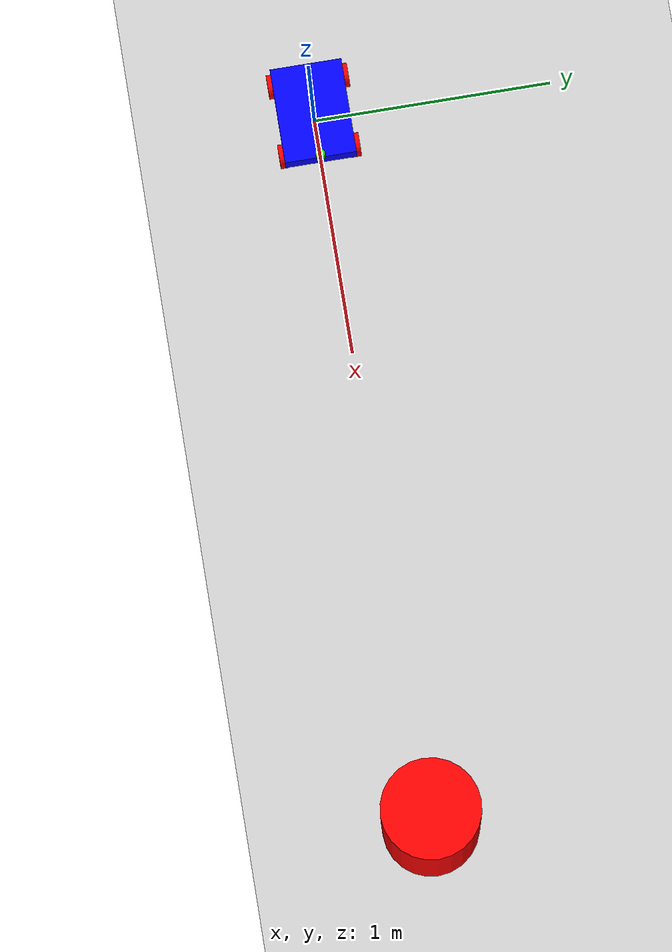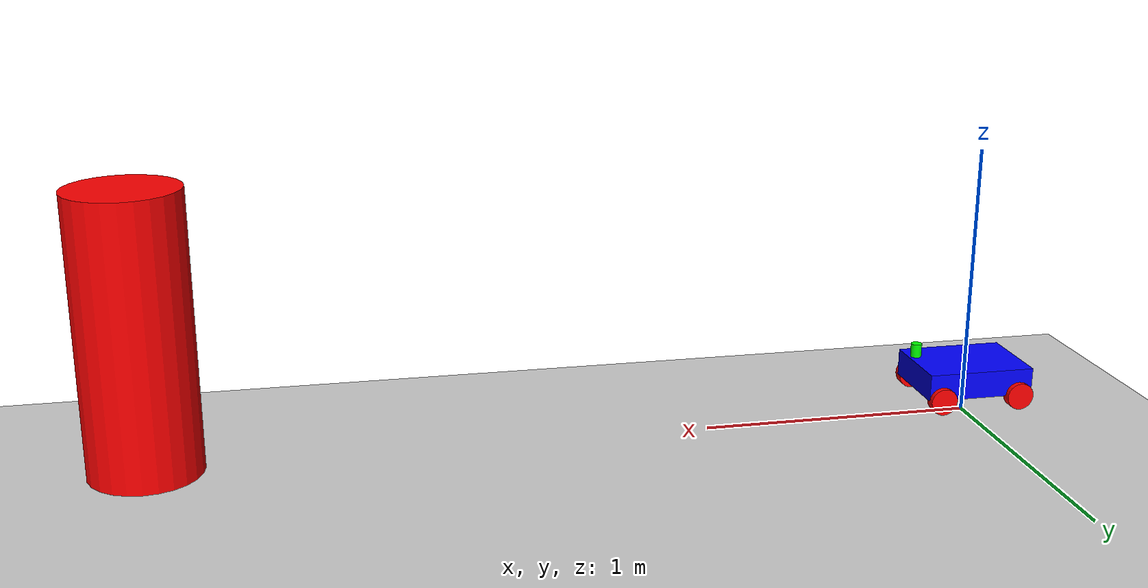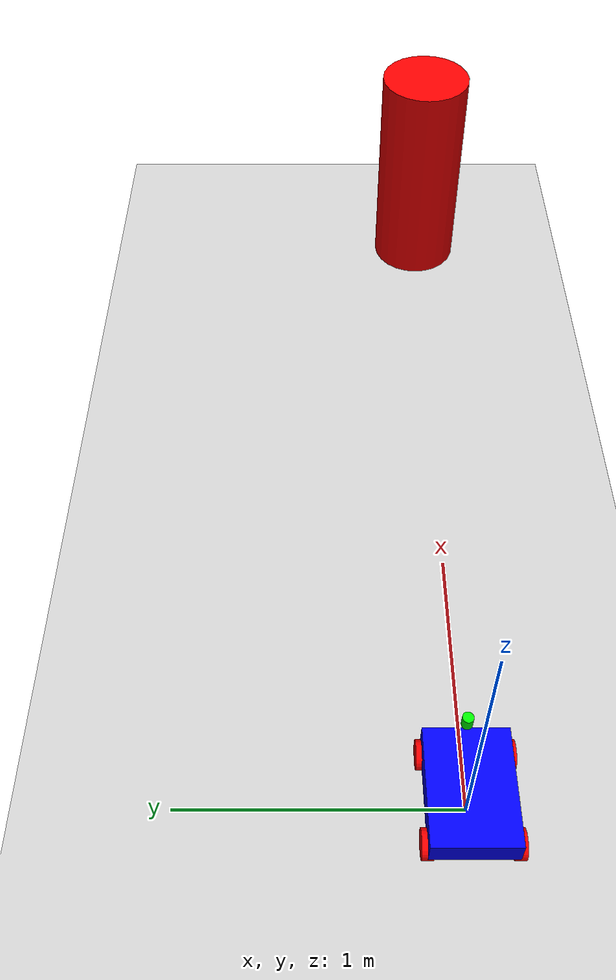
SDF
<?xml version="1.0" ?>
<sdf version="1.8">

  <!--
    Определяем мир (world) под названием "Moving_ros_100".
    Внутри указываем параметры физики, плагины для симуляции, освещение (sun) и объекты (models).
  -->
  <world name="Moving_ros_100">

    <physics name="1ms" type="ode">
      <max_step_size>0.001</max_step_size>
      <real_time_factor>1.0</real_time_factor>
    </physics>

    <plugin filename="gz-sim-physics-system" name="gz::sim::systems::Physics"/>
    <plugin filename="gz-sim-user-commands-system" name="gz::sim::systems::UserCommands"/>
    <plugin filename="gz-sim-scene-broadcaster-system" name="gz::sim::systems::SceneBroadcaster"/>
    <plugin filename="gz-sim-sensors-system" name="gz::sim::systems::Sensors"/>

    <!--
      Настраиваем источник света "sun" (солнечный свет) с заданным направлением,
      интенсивностью (diffuse, specular) и другими параметрами.
    -->
    <light type="directional" name="sun">
      <cast_shadows>true</cast_shadows>
      <pose>0 0 10 0 0 0</pose>
      <diffuse>0.8 0.8 0.8 1</diffuse>
      <specular>0.2 0.2 0.2 1</specular>
      <attenuation>
        <range>1000</range>
        <constant>0.9</constant>
        <linear>0.01</linear>
        <quadratic>0.001</quadratic>
      </attenuation>
      <direction>-0.5 0.1 -0.9</direction>
    </light>

    <!--
      Создаём "землю" (ground_plane) — большая плоскость для пола.
      static=true означает, что объект не участвует в движении, он статичен.
    -->
    <model name="ground_plane">
      <static>true</static>
      <link name="link">
        <collision name="collision">
          <geometry>
            <plane>
              <normal>0 0 1</normal>
            </plane>
          </geometry>
        </collision>
        <visual name="visual">
          <geometry>
            <plane>
              <normal>0 0 1</normal>
              <size>100 100</size>
            </plane>
          </geometry>
          <material>
            <ambient>0.8 0.8 0.8 1</ambient>
            <diffuse>0.8 0.8 0.8 1</diffuse>
            <specular>0.8 0.8 0.8 1</specular>
          </material>
        </visual>
      </link>
    </model>

    <!--
      Модель робота: "my_ros_100". У него корневым звеном (canonical_link) выступает "chassis".
      pose relative_to='world' означает, что робот будет размещён в абсолютных координатах.
    -->
    <model name='my_ros_100' canonical_link='chassis'>
      <pose relative_to='world'>0 0 0.1 0 0 0</pose>

      <!-- Основное звено: chassis (шасси) -->
      <link name='chassis'>
        <pose>0 0 0.05 0 0 0</pose>
        <inertial>
          <mass>5</mass>
          <inertia>
            <ixx>0.5</ixx>
            <ixy>0</ixy>
            <ixz>0</ixz>
            <iyy>0.5</iyy>
            <iyz>0</iyz>
            <izz>0.5</izz>
          </inertia>
        </inertial>
        <visual name='visual'>
          <geometry>
            <box>
              <size>0.4 0.3 0.1</size>
            </box>
          </geometry>
          <material>
            <ambient>0.0 0.0 1.0 1</ambient>
            <diffuse>0.0 0.0 1.0 1</diffuse>
            <specular>0.0 0.0 1.0 1</specular>
          </material>
        </visual>
        <collision name='collision'>
          <geometry>
            <box>
              <size>0.4 0.3 0.1</size>
            </box>
          </geometry>
        </collision>
      </link>

      <!-- Переднее левое колесо -->
      <link name='front_left_wheel'>
        <pose relative_to="chassis">0.15 0.15 -0.05 -1.5707 0 0</pose>
        <inertial>
          <mass>0.2</mass>
          <inertia>
            <ixx>0.145833</ixx>
            <ixy>0</ixy>
            <ixz>0</ixz>
            <iyy>0.145833</iyy>
            <iyz>0</iyz>
            <izz>0.125</izz>
          </inertia>
        </inertial>
        <visual name='visual'>
          <geometry>
            <cylinder>
              <radius>0.05</radius>
              <length>0.04</length>
            </cylinder>
          </geometry>
          <material>
            <ambient>1.0 0.0 0.0 1</ambient>
            <diffuse>1.0 0.0 0.0 1</diffuse>
            <specular>1.0 0.0 0.0 1</specular>
          </material>
        </visual>
        <collision name='collision'>
          <geometry>
            <cylinder>
              <radius>0.05</radius>
              <length>0.04</length>
            </cylinder>
          </geometry>
        </collision>
      </link>

      <!-- Переднее правое колесо -->
      <link name='front_right_wheel'>
        <pose relative_to="chassis">0.15 -0.15 -0.05 -1.5707 0 0</pose>
        <inertial>
          <mass>0.2</mass>
          <inertia>
            <ixx>0.145833</ixx>
            <ixy>0</ixy>
            <ixz>0</ixz>
            <iyy>0.145833</iyy>
            <iyz>0</iyz>
            <izz>0.125</izz>
          </inertia>
        </inertial>
        <visual name='visual'>
          <geometry>
            <cylinder>
              <radius>0.05</radius>
              <length>0.04</length>
            </cylinder>
          </geometry>
          <material>
            <ambient>1.0 0.0 0.0 1</ambient>
            <diffuse>1.0 0.0 0.0 1</diffuse>
            <specular>1.0 0.0 0.0 1</specular>
          </material>
        </visual>
        <collision name='collision'>
          <geometry>
            <cylinder>
              <radius>0.05</radius>
              <length>0.04</length>
            </cylinder>
          </geometry>
        </collision>
      </link>

      <!-- Заднее левое колесо -->
      <link name='rear_left_wheel'>
        <pose relative_to="chassis">-0.15 0.15 -0.05 -1.5707 0 0</pose>
        <inertial>
          <mass>0.2</mass>
          <inertia>
            <ixx>0.145833</ixx>
            <ixy>0</ixy>
            <ixz>0</ixz>
            <iyy>0.145833</iyy>
            <iyz>0</iyz>
            <izz>0.125</izz>
          </inertia>
        </inertial>
        <visual name='visual'>
          <geometry>
            <cylinder>
              <radius>0.05</radius>
              <length>0.04</length>
            </cylinder>
          </geometry>
          <material>
            <ambient>1.0 0.0 0.0 1</ambient>
            <diffuse>1.0 0.0 0.0 1</diffuse>
            <specular>1.0 0.0 0.0 1</specular>
          </material>
        </visual>
        <collision name='collision'>
          <geometry>
            <cylinder>
              <radius>0.05</radius>
              <length>0.04</length>
            </cylinder>
          </geometry>
        </collision>
      </link>

      <!-- Заднее правое колесо -->
      <link name='rear_right_wheel'>
        <pose relative_to="chassis">-0.15 -0.15 -0.05 -1.5707 0 0</pose>
        <inertial>
          <mass>0.2</mass>
          <inertia>
            <ixx>0.145833</ixx>
            <ixy>0</ixy>
            <ixz>0</ixz>
            <iyy>0.145833</iyy>
            <iyz>0</iyz>
            <izz>0.125</izz>
          </inertia>
        </inertial>
        <visual name='visual'>
          <geometry>
            <cylinder>
              <radius>0.05</radius>
              <length>0.04</length>
            </cylinder>
          </geometry>
          <material>
            <ambient>1.0 0.0 0.0 1</ambient>
            <diffuse>1.0 0.0 0.0 1</diffuse>
            <specular>1.0 0.0 0.0 1</specular>
          </material>
        </visual>
        <collision name='collision'>
          <geometry>
            <cylinder>
              <radius>0.05</radius>
              <length>0.04</length>
            </cylinder>
          </geometry>
        </collision>
      </link>

      <!-- Основной лидар спереди -->
      <link name='front_lidar_link'>
        <pose relative_to='chassis'>0.2 0 0.1 0 0 0</pose>
        <inertial>
          <mass>0.1</mass>
          <inertia>
            <ixx>0.01</ixx>
            <ixy>0</ixy>
            <ixz>0</ixz>
            <iyy>0.01</iyy>
            <iyz>0</iyz>
            <izz>0.01</izz>
          </inertia>
        </inertial>
        <visual name='visual'>
          <geometry>
            <cylinder>
              <radius>0.02</radius>
              <length>0.05</length>
            </cylinder>
          </geometry>
          <material>
            <ambient>0.0 1.0 0.0 1</ambient>
            <diffuse>0.0 1.0 0.0 1</diffuse>
            <specular>0.0 1.0 0.0 1</specular>
          </material>
        </visual>
        <collision name='collision'>
          <geometry>
            <cylinder>
              <radius>0.02</radius>
              <length>0.05</length>
            </cylinder>
          </geometry>
        </collision>
        <sensor name="front_lidar_sensor" type="gpu_lidar">
          <pose>0 0 0 0 0 0</pose>
          <topic>lidar</topic>
          <update_rate>10</update_rate>
          <lidar>
            <scan>
              <horizontal>
                <samples>360</samples>
                <resolution>1</resolution>
                <min_angle>-3.14159</min_angle>
                <max_angle>3.14159</max_angle>
              </horizontal>
            </scan>
            <range>
              <min>0.1</min>
              <max>10.0</max>
              <resolution>0.01</resolution>
            </range>
          </lidar>
          <visualize>true</visualize>
        </sensor>
      </link>

      <!-- Соединения колес с шасси -->
      <joint name="front_left_wheel_joint" type="revolute">
        <parent>chassis</parent>
        <child>front_left_wheel</child>
        <axis>
          <xyz>0 0 1</xyz>
        </axis>
      </joint>

      <joint name="front_right_wheel_joint" type="revolute">
        <parent>chassis</parent>
        <child>front_right_wheel</child>
        <axis>
          <xyz>0 0 1</xyz>
        </axis>
      </joint>

      <joint name="rear_left_wheel_joint" type="revolute">
        <parent>chassis</parent>
        <child>rear_left_wheel</child>
        <axis>
          <xyz>0 0 1</xyz>
        </axis>
      </joint>

      <joint name="rear_right_wheel_joint" type="revolute">
        <parent>chassis</parent>
        <child>rear_right_wheel</child>
        <axis>
          <xyz>0 0 1</xyz>
        </axis>
      </joint>

      <!-- Соединение лидара с шасси -->
      <joint name="front_lidar_joint" type="fixed">
        <parent>chassis</parent>
        <child>front_lidar_link</child>
      </joint>

      <!-- Плагин для управления роботом -->
      <plugin filename="gz-sim-diff-drive-system" name="gz::sim::systems::DiffDrive">
        <left_joint>front_left_wheel_joint</left_joint>
        <left_joint>rear_left_wheel_joint</left_joint>
        <right_joint>front_right_wheel_joint</right_joint>
        <right_joint>rear_right_wheel_joint</right_joint>
        <wheel_separation>0.3</wheel_separation>
        <wheel_radius>0.05</wheel_radius>
        <odom_publish_frequency>10</odom_publish_frequency>
        <topic>cmd_vel</topic>
      </plugin>

      <!-- Плагин для публикации одометрии -->
      <plugin filename="gz-sim-pose-publisher-system" name="gz::sim::systems::PosePublisher">
        <publish_link_pose>true</publish_link_pose>
        <publish_sensor_pose>true</publish_sensor_pose>
        <publish_collision_pose>false</publish_collision_pose>
        <publish_visual_pose>false</publish_visual_pose>
        <publish_nested_model_pose>true</publish_nested_model_pose>
        <use_pose_vector_msg>true</use_pose_vector_msg>
        <static_publisher>true</static_publisher>
        <static_update_frequency>1</static_update_frequency>
      </plugin>

      <!-- Плагин для публикации одометрии -->
      <plugin filename="gz-sim-odometry-publisher-system" name="gz::sim::systems::OdometryPublisher">
        <odom_frame>odom</odom_frame>
        <robot_base_frame>chassis</robot_base_frame>
        <odom_publish_frequency>10</odom_publish_frequency>
        <topic>odom</topic>
      </plugin>
    </model>

    <!--
      "green_cube" — зелёный кубик, размером 50x50x50 мм (0.05 м),
      располагается на x=1.5 (чуть впереди робота).
    -->

    <model name="cylinder">
      <static>true</static>
      <pose>3 0 0.5 0 0 0</pose>
      <link name="link">
        <collision name="collision">
          <geometry>
            <cylinder>
              <radius>0.2</radius>
              <length>1.0</length>
            </cylinder>
          </geometry>
        </collision>
        <visual name="visual">
          <geometry>
            <cylinder>
              <radius>0.2</radius>
              <length>1.0</length>
            </cylinder>
          </geometry>
          <material>
            <ambient>1 0 0 1</ambient>
            <diffuse>1 0 0 1</diffuse>
            <specular>0.1 0.1 0.1 1</specular>
          </material>
        </visual>
      </link>
    </model>

    <!--
      Плагины для движения робота с клавиатуры (TriggeredPublisher).
      При нажатии определённых клавиш (16777234, 16777235 и т.д.)
      публикуется Twist на топик /cmd_vel.
    -->
    <!-- Moving Left-->
    <plugin filename="gz-sim-triggered-publisher-system" name="gz::sim::systems::TriggeredPublisher">
      <input type="gz.msgs.Int32" topic="/keyboard/keypress">
        <match field="data">16777234</match>
      </input>
      <output type="gz.msgs.Twist" topic="/cmd_vel">
        linear: {x: 0.0}, angular: {z: 0.5}
      </output>
    </plugin>

    <!-- Moving Forward-->
    <plugin filename="gz-sim-triggered-publisher-system" name="gz::sim::systems::TriggeredPublisher">
      <input type="gz.msgs.Int32" topic="/keyboard/keypress">
        <match field="data">16777235</match>
      </input>
      <output type="gz.msgs.Twist" topic="/cmd_vel">
        linear: {x: 0.5}, angular: {z: 0.0}
      </output>
    </plugin>

    <!-- Moving Right-->
    <plugin filename="gz-sim-triggered-publisher-system" name="gz::sim::systems::TriggeredPublisher">
      <input type="gz.msgs.Int32" topic="/keyboard/keypress">
        <match field="data">16777236</match>
      </input>
      <output type="gz.msgs.Twist" topic="/cmd_vel">
        linear: {x: 0.0}, angular: {z: -0.5}
      </output>
    </plugin>

    <!-- Moving Backward-->
    <plugin filename="gz-sim-triggered-publisher-system" name="gz::sim::systems::TriggeredPublisher">
      <input type="gz.msgs.Int32" topic="/keyboard/keypress">
        <match field="data">16777237</match>
      </input>
      <output type="gz.msgs.Twist" topic="/cmd_vel">
        linear: {x: -0.5}, angular: {z: 0.0}
      </output>
    </plugin>

  </world>
</sdf>
